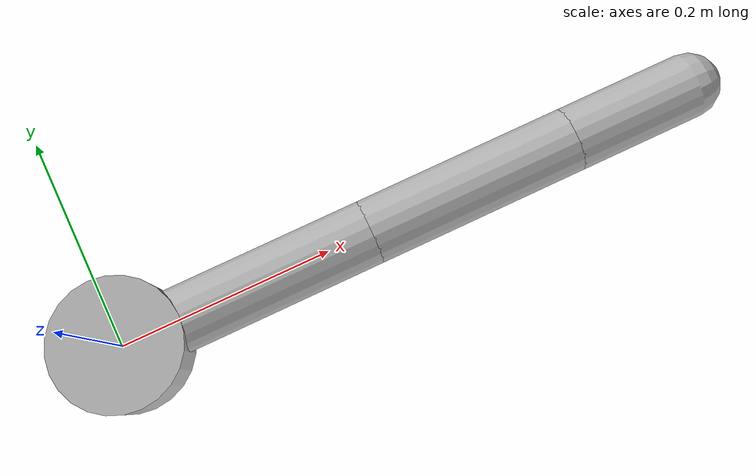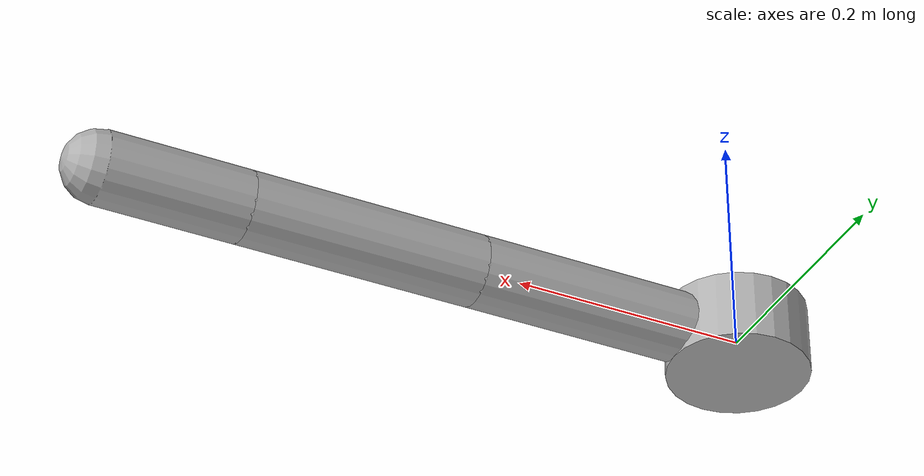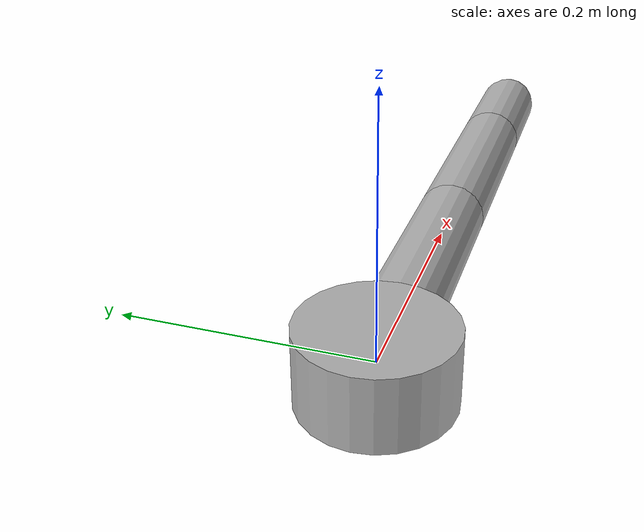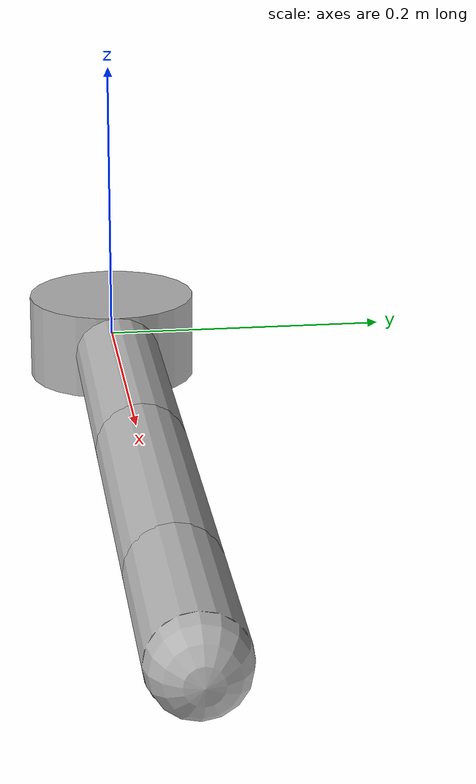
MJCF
<mujoco model="example_3dof_arm">
  <compiler angle="radian" autolimits="true"/>
  <option timestep="0.002" gravity="0 0 -9.81" integrator="implicitfast"/>

  <default>
    <geom type="capsule" size="0.03" rgba="0.7 0.7 0.7 1"/>
  </default>

  <worldbody>
    <body name="base_link">
      <geom type="cylinder" size="0.06 0.03"/>
      <inertial pos="0 0 0" mass="2.0" diaginertia="0.02 0.02 0.03"/>

      <body name="link_alpha">
        <!-- GROUND TRUTH: waist icin Fv=0.45, Fc=1.20 -->
        <joint name="waist" type="hinge" axis="0 0 1"
               range="-3.14 3.14"
               damping="0" frictionloss="0"/>
        <inertial pos="0.12 0 0" mass="1.2" diaginertia="0.004 0.015 0.015"/>
        <geom fromto="0 0 0 0.24 0 0"/>

        <body name="link_beta" pos="0.24 0 0">
          <!-- GROUND TRUTH: shoulder icin Fv=0.30, Fc=0.85 -->
          <joint name="shoulder" type="hinge" axis="0 0 1"
                 range="-2.0 2.0"
                 damping="0" frictionloss="0"/>
          <inertial pos="0.10 0 0" mass="0.9" diaginertia="0.003 0.010 0.010"/>
          <geom fromto="0 0 0 0.2 0 0"/>

          <body name="link_gamma" pos="0.2 0 0">
            <!-- GROUND TRUTH: wrist icin Fv=0.12, Fc=0.35 -->
            <joint name="wrist" type="hinge" axis="0 0 1"
                   range="-2.5 2.5"
                   damping="0" frictionloss="0"/>
            <inertial pos="0.06 0 0" mass="0.4" diaginertia="0.001 0.003 0.003"/>
            <geom fromto="0 0 0 0.12 0 0"/>
          </body>
        </body>
      </body>
    </body>
  </worldbody>

  <actuator>
    <!-- GROUND TRUTH servo kazanclari: pipeline'in bulmasi gereken hedef degerler -->
    <position name="waist_position"    joint="waist"    kp="300" kv="30" forcerange="-50 50"/>
    <position name="shoulder_position" joint="shoulder" kp="220" kv="22" forcerange="-40 40"/>
    <position name="wrist_position"    joint="wrist"    kp="90"  kv="9"  forcerange="-20 20"/>
  </actuator>
</mujoco>
